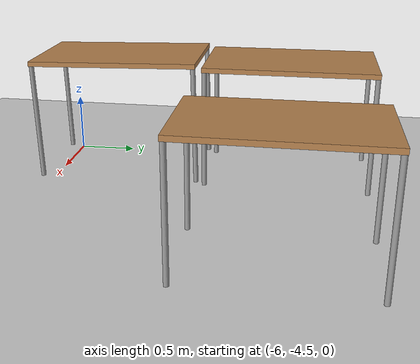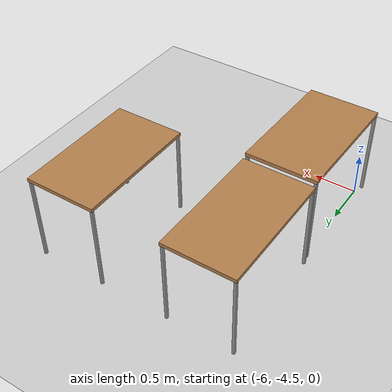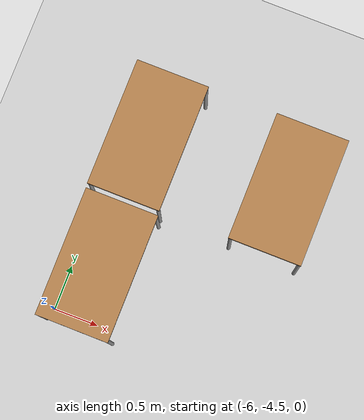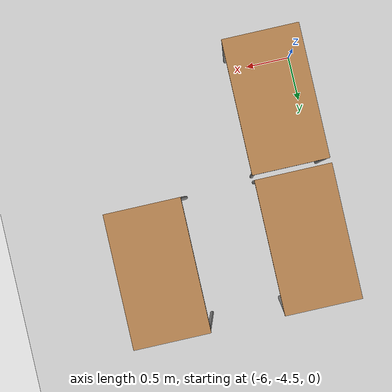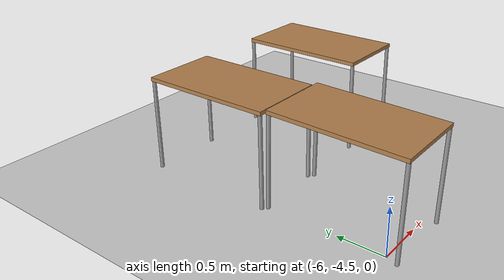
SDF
<sdf version="1.6">
 <world name="default">
  <model name="ground_plane">
   <static>1</static>
   <link name="link">
    <collision name="collision">
     <geometry><plane><normal>0 0 1</normal><size>100 100</size></plane></geometry>
     <surface><friction><ode><mu>100</mu><mu2>50</mu2></ode></friction></surface>
    </collision>
    <visual name="visual">
     <cast_shadows>0</cast_shadows>
     <geometry><plane><normal>0 0 1</normal><size>100 100</size></plane></geometry>
     <material>
      <script><uri>file://media/materials/scripts/gazebo.material</uri><name>Gazebo/Grey</name></script>
     </material>
    </visual>
   </link>
  </model>
  <model name="table_vert_0_clone_clone_clone_0_clone">
   <link name="link">
    <pose>0 0 0 0 0 -1.56614</pose>
    <inertial>
     <inertia><ixx>1</ixx><ixy>0</ixy><ixz>0</ixz><iyy>1</iyy><iyz>0</iyz><izz>1</izz></inertia>
     <mass>1</mass>
    </inertial>
    <visual name="visual1">
     <pose>0 0 1 0 -0 0</pose>
     <geometry><box><size>1.4 0.8 0.04</size></box></geometry>
     <material>
      <script><uri>file://media/materials/scripts/gazebo.material</uri><name>Gazebo/Wood</name></script>
      <ambient>1 1 1 1</ambient>
      <diffuse>1 1 1 1</diffuse>
      <specular>0.2 0.2 0.2 1</specular>
      <emissive>0 0 0 1</emissive>
     </material>
    </visual>
    <visual name="front_left_leg">
     <pose>0.68 0.38 0.5 0 -0 0</pose>
     <geometry><cylinder><radius>0.02</radius><length>1</length></cylinder></geometry>
     <material>
      <script><uri>file://media/materials/scripts/gazebo.material</uri><name>Gazebo/Grey</name></script>
      <ambient>0.3 0.3 0.3 1</ambient>
      <diffuse>0.7 0.7 0.7 1</diffuse>
      <specular>0.01 0.01 0.01 1</specular>
      <emissive>0 0 0 1</emissive>
     </material>
    </visual>
    <visual name="front_right_leg">
     <pose>0.68 -0.38 0.5 0 -0 0</pose>
     <geometry><cylinder><radius>0.02</radius><length>1</length></cylinder></geometry>
     <material>
      <script><uri>file://media/materials/scripts/gazebo.material</uri><name>Gazebo/Grey</name></script>
      <ambient>0.3 0.3 0.3 1</ambient>
      <diffuse>0.7 0.7 0.7 1</diffuse>
      <specular>0.01 0.01 0.01 1</specular>
      <emissive>0 0 0 1</emissive>
     </material>
    </visual>
    <visual name="back_right_leg">
     <pose>-0.68 -0.38 0.5 0 -0 0</pose>
     <geometry><cylinder><radius>0.02</radius><length>1</length></cylinder></geometry>
     <material>
      <script><uri>file://media/materials/scripts/gazebo.material</uri><name>Gazebo/Grey</name></script>
      <ambient>0.3 0.3 0.3 1</ambient>
      <diffuse>0.7 0.7 0.7 1</diffuse>
      <specular>0.01 0.01 0.01 1</specular>
      <emissive>0 0 0 1</emissive>
     </material>
    </visual>
    <visual name="back_left_leg">
     <pose>-0.68 0.38 0.5 0 -0 0</pose>
     <geometry><cylinder><radius>0.02</radius><length>1</length></cylinder></geometry>
     <material>
      <script><uri>file://media/materials/scripts/gazebo.material</uri><name>Gazebo/Grey</name></script>
      <ambient>0.3 0.3 0.3 1</ambient>
      <diffuse>0.7 0.7 0.7 1</diffuse>
      <specular>0.01 0.01 0.01 1</specular>
      <emissive>0 0 0 1</emissive>
     </material>
    </visual>
    <collision name="surface">
     <pose>0 0 1 0 -0 0</pose>
     <geometry><box><size>1.5 0.8 0.03</size></box></geometry>
     <surface>
      <friction>
       <ode><mu>0.6</mu><mu2>0.6</mu2><fdir1>0 0 0</fdir1><slip1>0</slip1><slip2>0</slip2></ode>
       <torsional>
        <coefficient>1</coefficient>
        <patch_radius>0</patch_radius>
        <surface_radius>0</surface_radius>
        <use_patch_radius>1</use_patch_radius>
        <ode><slip>0</slip></ode>
       </torsional>
      </friction>
      <bounce><restitution_coefficient>0</restitution_coefficient><threshold>1e+06</threshold></bounce>
      <contact>
       <collide_without_contact>0</collide_without_contact>
       <collide_without_contact_bitmask>1</collide_without_contact_bitmask>
       <collide_bitmask>1</collide_bitmask>
       <ode>
        <soft_cfm>0</soft_cfm>
        <soft_erp>0.2</soft_erp>
        <kp>1e+13</kp>
        <kd>1</kd>
        <max_vel>0.01</max_vel>
        <min_depth>0</min_depth>
       </ode>
       <bullet>
        <split_impulse>1</split_impulse>
        <split_impulse_penetration_threshold>-0.01</split_impulse_penetration_threshold>
        <soft_cfm>0</soft_cfm>
        <soft_erp>0.2</soft_erp>
        <kp>1e+13</kp>
        <kd>1</kd>
       </bullet>
      </contact>
     </surface>
    </collision>
    <collision name="front_left_leg">
     <pose>0.68 0.38 0.5 0 -0 0</pose>
     <geometry><cylinder><radius>0.02</radius><length>1</length></cylinder></geometry>
     <surface>
      <friction>
       <ode><mu>1</mu><mu2>1</mu2><fdir1>0 0 0</fdir1><slip1>0</slip1><slip2>0</slip2></ode>
       <torsional>
        <coefficient>1</coefficient>
        <patch_radius>0</patch_radius>
        <surface_radius>0</surface_radius>
        <use_patch_radius>1</use_patch_radius>
        <ode><slip>0</slip></ode>
       </torsional>
      </friction>
      <bounce><restitution_coefficient>0</restitution_coefficient><threshold>1e+06</threshold></bounce>
      <contact>
       <collide_without_contact>0</collide_without_contact>
       <collide_without_contact_bitmask>1</collide_without_contact_bitmask>
       <collide_bitmask>1</collide_bitmask>
       <ode>
        <soft_cfm>0</soft_cfm>
        <soft_erp>0.2</soft_erp>
        <kp>1e+13</kp>
        <kd>1</kd>
        <max_vel>0.01</max_vel>
        <min_depth>0</min_depth>
       </ode>
       <bullet>
        <split_impulse>1</split_impulse>
        <split_impulse_penetration_threshold>-0.01</split_impulse_penetration_threshold>
        <soft_cfm>0</soft_cfm>
        <soft_erp>0.2</soft_erp>
        <kp>1e+13</kp>
        <kd>1</kd>
       </bullet>
      </contact>
     </surface>
    </collision>
    <collision name="front_right_leg">
     <pose>0.68 -0.38 0.5 0 -0 0</pose>
     <geometry><cylinder><radius>0.02</radius><length>1</length></cylinder></geometry>
     <surface>
      <friction>
       <ode><mu>1</mu><mu2>1</mu2><fdir1>0 0 0</fdir1><slip1>0</slip1><slip2>0</slip2></ode>
       <torsional>
        <coefficient>1</coefficient>
        <patch_radius>0</patch_radius>
        <surface_radius>0</surface_radius>
        <use_patch_radius>1</use_patch_radius>
        <ode><slip>0</slip></ode>
       </torsional>
      </friction>
      <bounce><restitution_coefficient>0</restitution_coefficient><threshold>1e+06</threshold></bounce>
      <contact>
       <collide_without_contact>0</collide_without_contact>
       <collide_without_contact_bitmask>1</collide_without_contact_bitmask>
       <collide_bitmask>1</collide_bitmask>
       <ode>
        <soft_cfm>0</soft_cfm>
        <soft_erp>0.2</soft_erp>
        <kp>1e+13</kp>
        <kd>1</kd>
        <max_vel>0.01</max_vel>
        <min_depth>0</min_depth>
       </ode>
       <bullet>
        <split_impulse>1</split_impulse>
        <split_impulse_penetration_threshold>-0.01</split_impulse_penetration_threshold>
        <soft_cfm>0</soft_cfm>
        <soft_erp>0.2</soft_erp>
        <kp>1e+13</kp>
        <kd>1</kd>
       </bullet>
      </contact>
     </surface>
    </collision>
    <collision name="back_right_leg">
     <pose>-0.68 -0.38 0.5 0 -0 0</pose>
     <geometry><cylinder><radius>0.02</radius><length>1</length></cylinder></geometry>
     <surface>
      <friction>
       <ode><mu>1</mu><mu2>1</mu2><fdir1>0 0 0</fdir1><slip1>0</slip1><slip2>0</slip2></ode>
       <torsional>
        <coefficient>1</coefficient>
        <patch_radius>0</patch_radius>
        <surface_radius>0</surface_radius>
        <use_patch_radius>1</use_patch_radius>
        <ode><slip>0</slip></ode>
       </torsional>
      </friction>
      <bounce><restitution_coefficient>0</restitution_coefficient><threshold>1e+06</threshold></bounce>
      <contact>
       <collide_without_contact>0</collide_without_contact>
       <collide_without_contact_bitmask>1</collide_without_contact_bitmask>
       <collide_bitmask>1</collide_bitmask>
       <ode>
        <soft_cfm>0</soft_cfm>
        <soft_erp>0.2</soft_erp>
        <kp>1e+13</kp>
        <kd>1</kd>
        <max_vel>0.01</max_vel>
        <min_depth>0</min_depth>
       </ode>
       <bullet>
        <split_impulse>1</split_impulse>
        <split_impulse_penetration_threshold>-0.01</split_impulse_penetration_threshold>
        <soft_cfm>0</soft_cfm>
        <soft_erp>0.2</soft_erp>
        <kp>1e+13</kp>
        <kd>1</kd>
       </bullet>
      </contact>
     </surface>
    </collision>
    <collision name="back_left_leg">
     <pose>-0.68 0.38 0.5 0 -0 0</pose>
     <geometry><cylinder><radius>0.02</radius><length>1</length></cylinder></geometry>
     <surface>
      <friction>
       <ode><mu>1</mu><mu2>1</mu2><fdir1>0 0 0</fdir1><slip1>0</slip1><slip2>0</slip2></ode>
       <torsional>
        <coefficient>1</coefficient>
        <patch_radius>0</patch_radius>
        <surface_radius>0</surface_radius>
        <use_patch_radius>1</use_patch_radius>
        <ode><slip>0</slip></ode>
       </torsional>
      </friction>
      <bounce><restitution_coefficient>0</restitution_coefficient><threshold>1e+06</threshold></bounce>
      <contact>
       <collide_without_contact>0</collide_without_contact>
       <collide_without_contact_bitmask>1</collide_without_contact_bitmask>
       <collide_bitmask>1</collide_bitmask>
       <ode>
        <soft_cfm>0</soft_cfm>
        <soft_erp>0.2</soft_erp>
        <kp>1e+13</kp>
        <kd>1</kd>
        <max_vel>0.01</max_vel>
        <min_depth>0</min_depth>
       </ode>
       <bullet>
        <split_impulse>1</split_impulse>
        <split_impulse_penetration_threshold>-0.01</split_impulse_penetration_threshold>
        <soft_cfm>0</soft_cfm>
        <soft_erp>0.2</soft_erp>
        <kp>1e+13</kp>
        <kd>1</kd>
       </bullet>
      </contact>
     </surface>
    </collision>
   </link>
   <static>0</static>
   <pose>-4.10739 -2.5099 -1.1e-05 -3e-06 -1e-06 -0.004659</pose>
  </model>
  <model name="table_vert_0_clone_clone_clone_0_clone_0">
   <link name="link">
    <pose>0 0 0 0 0 -1.56614</pose>
    <inertial>
     <inertia><ixx>1</ixx><ixy>0</ixy><ixz>0</ixz><iyy>1</iyy><iyz>0</iyz><izz>1</izz></inertia>
     <mass>1</mass>
    </inertial>
    <visual name="visual1">
     <pose>0 0 1 0 -0 0</pose>
     <geometry><box><size>1.4 0.8 0.04</size></box></geometry>
     <material>
      <script><uri>file://media/materials/scripts/gazebo.material</uri><name>Gazebo/Wood</name></script>
      <ambient>1 1 1 1</ambient>
      <diffuse>1 1 1 1</diffuse>
      <specular>0.2 0.2 0.2 1</specular>
      <emissive>0 0 0 1</emissive>
     </material>
    </visual>
    <visual name="front_left_leg">
     <pose>0.68 0.38 0.5 0 -0 0</pose>
     <geometry><cylinder><radius>0.02</radius><length>1</length></cylinder></geometry>
     <material>
      <script><uri>file://media/materials/scripts/gazebo.material</uri><name>Gazebo/Grey</name></script>
      <ambient>0.3 0.3 0.3 1</ambient>
      <diffuse>0.7 0.7 0.7 1</diffuse>
      <specular>0.01 0.01 0.01 1</specular>
      <emissive>0 0 0 1</emissive>
     </material>
    </visual>
    <visual name="front_right_leg">
     <pose>0.68 -0.38 0.5 0 -0 0</pose>
     <geometry><cylinder><radius>0.02</radius><length>1</length></cylinder></geometry>
     <material>
      <script><uri>file://media/materials/scripts/gazebo.material</uri><name>Gazebo/Grey</name></script>
      <ambient>0.3 0.3 0.3 1</ambient>
      <diffuse>0.7 0.7 0.7 1</diffuse>
      <specular>0.01 0.01 0.01 1</specular>
      <emissive>0 0 0 1</emissive>
     </material>
    </visual>
    <visual name="back_right_leg">
     <pose>-0.68 -0.38 0.5 0 -0 0</pose>
     <geometry><cylinder><radius>0.02</radius><length>1</length></cylinder></geometry>
     <material>
      <script><uri>file://media/materials/scripts/gazebo.material</uri><name>Gazebo/Grey</name></script>
      <ambient>0.3 0.3 0.3 1</ambient>
      <diffuse>0.7 0.7 0.7 1</diffuse>
      <specular>0.01 0.01 0.01 1</specular>
      <emissive>0 0 0 1</emissive>
     </material>
    </visual>
    <visual name="back_left_leg">
     <pose>-0.68 0.38 0.5 0 -0 0</pose>
     <geometry><cylinder><radius>0.02</radius><length>1</length></cylinder></geometry>
     <material>
      <script><uri>file://media/materials/scripts/gazebo.material</uri><name>Gazebo/Grey</name></script>
      <ambient>0.3 0.3 0.3 1</ambient>
      <diffuse>0.7 0.7 0.7 1</diffuse>
      <specular>0.01 0.01 0.01 1</specular>
      <emissive>0 0 0 1</emissive>
     </material>
    </visual>
    <collision name="surface">
     <pose>0 0 1 0 -0 0</pose>
     <geometry><box><size>1.5 0.8 0.03</size></box></geometry>
     <surface>
      <friction>
       <ode><mu>0.6</mu><mu2>0.6</mu2><fdir1>0 0 0</fdir1><slip1>0</slip1><slip2>0</slip2></ode>
       <torsional>
        <coefficient>1</coefficient>
        <patch_radius>0</patch_radius>
        <surface_radius>0</surface_radius>
        <use_patch_radius>1</use_patch_radius>
        <ode><slip>0</slip></ode>
       </torsional>
      </friction>
      <bounce><restitution_coefficient>0</restitution_coefficient><threshold>1e+06</threshold></bounce>
      <contact>
       <collide_without_contact>0</collide_without_contact>
       <collide_without_contact_bitmask>1</collide_without_contact_bitmask>
       <collide_bitmask>1</collide_bitmask>
       <ode>
        <soft_cfm>0</soft_cfm>
        <soft_erp>0.2</soft_erp>
        <kp>1e+13</kp>
        <kd>1</kd>
        <max_vel>0.01</max_vel>
        <min_depth>0</min_depth>
       </ode>
       <bullet>
        <split_impulse>1</split_impulse>
        <split_impulse_penetration_threshold>-0.01</split_impulse_penetration_threshold>
        <soft_cfm>0</soft_cfm>
        <soft_erp>0.2</soft_erp>
        <kp>1e+13</kp>
        <kd>1</kd>
       </bullet>
      </contact>
     </surface>
    </collision>
    <collision name="front_left_leg">
     <pose>0.68 0.38 0.5 0 -0 0</pose>
     <geometry><cylinder><radius>0.02</radius><length>1</length></cylinder></geometry>
     <surface>
      <friction>
       <ode><mu>1</mu><mu2>1</mu2><fdir1>0 0 0</fdir1><slip1>0</slip1><slip2>0</slip2></ode>
       <torsional>
        <coefficient>1</coefficient>
        <patch_radius>0</patch_radius>
        <surface_radius>0</surface_radius>
        <use_patch_radius>1</use_patch_radius>
        <ode><slip>0</slip></ode>
       </torsional>
      </friction>
      <bounce><restitution_coefficient>0</restitution_coefficient><threshold>1e+06</threshold></bounce>
      <contact>
       <collide_without_contact>0</collide_without_contact>
       <collide_without_contact_bitmask>1</collide_without_contact_bitmask>
       <collide_bitmask>1</collide_bitmask>
       <ode>
        <soft_cfm>0</soft_cfm>
        <soft_erp>0.2</soft_erp>
        <kp>1e+13</kp>
        <kd>1</kd>
        <max_vel>0.01</max_vel>
        <min_depth>0</min_depth>
       </ode>
       <bullet>
        <split_impulse>1</split_impulse>
        <split_impulse_penetration_threshold>-0.01</split_impulse_penetration_threshold>
        <soft_cfm>0</soft_cfm>
        <soft_erp>0.2</soft_erp>
        <kp>1e+13</kp>
        <kd>1</kd>
       </bullet>
      </contact>
     </surface>
    </collision>
    <collision name="front_right_leg">
     <pose>0.68 -0.38 0.5 0 -0 0</pose>
     <geometry><cylinder><radius>0.02</radius><length>1</length></cylinder></geometry>
     <surface>
      <friction>
       <ode><mu>1</mu><mu2>1</mu2><fdir1>0 0 0</fdir1><slip1>0</slip1><slip2>0</slip2></ode>
       <torsional>
        <coefficient>1</coefficient>
        <patch_radius>0</patch_radius>
        <surface_radius>0</surface_radius>
        <use_patch_radius>1</use_patch_radius>
        <ode><slip>0</slip></ode>
       </torsional>
      </friction>
      <bounce><restitution_coefficient>0</restitution_coefficient><threshold>1e+06</threshold></bounce>
      <contact>
       <collide_without_contact>0</collide_without_contact>
       <collide_without_contact_bitmask>1</collide_without_contact_bitmask>
       <collide_bitmask>1</collide_bitmask>
       <ode>
        <soft_cfm>0</soft_cfm>
        <soft_erp>0.2</soft_erp>
        <kp>1e+13</kp>
        <kd>1</kd>
        <max_vel>0.01</max_vel>
        <min_depth>0</min_depth>
       </ode>
       <bullet>
        <split_impulse>1</split_impulse>
        <split_impulse_penetration_threshold>-0.01</split_impulse_penetration_threshold>
        <soft_cfm>0</soft_cfm>
        <soft_erp>0.2</soft_erp>
        <kp>1e+13</kp>
        <kd>1</kd>
       </bullet>
      </contact>
     </surface>
    </collision>
    <collision name="back_right_leg">
     <pose>-0.68 -0.38 0.5 0 -0 0</pose>
     <geometry><cylinder><radius>0.02</radius><length>1</length></cylinder></geometry>
     <surface>
      <friction>
       <ode><mu>1</mu><mu2>1</mu2><fdir1>0 0 0</fdir1><slip1>0</slip1><slip2>0</slip2></ode>
       <torsional>
        <coefficient>1</coefficient>
        <patch_radius>0</patch_radius>
        <surface_radius>0</surface_radius>
        <use_patch_radius>1</use_patch_radius>
        <ode><slip>0</slip></ode>
       </torsional>
      </friction>
      <bounce><restitution_coefficient>0</restitution_coefficient><threshold>1e+06</threshold></bounce>
      <contact>
       <collide_without_contact>0</collide_without_contact>
       <collide_without_contact_bitmask>1</collide_without_contact_bitmask>
       <collide_bitmask>1</collide_bitmask>
       <ode>
        <soft_cfm>0</soft_cfm>
        <soft_erp>0.2</soft_erp>
        <kp>1e+13</kp>
        <kd>1</kd>
        <max_vel>0.01</max_vel>
        <min_depth>0</min_depth>
       </ode>
       <bullet>
        <split_impulse>1</split_impulse>
        <split_impulse_penetration_threshold>-0.01</split_impulse_penetration_threshold>
        <soft_cfm>0</soft_cfm>
        <soft_erp>0.2</soft_erp>
        <kp>1e+13</kp>
        <kd>1</kd>
       </bullet>
      </contact>
     </surface>
    </collision>
    <collision name="back_left_leg">
     <pose>-0.68 0.38 0.5 0 -0 0</pose>
     <geometry><cylinder><radius>0.02</radius><length>1</length></cylinder></geometry>
     <surface>
      <friction>
       <ode><mu>1</mu><mu2>1</mu2><fdir1>0 0 0</fdir1><slip1>0</slip1><slip2>0</slip2></ode>
       <torsional>
        <coefficient>1</coefficient>
        <patch_radius>0</patch_radius>
        <surface_radius>0</surface_radius>
        <use_patch_radius>1</use_patch_radius>
        <ode><slip>0</slip></ode>
       </torsional>
      </friction>
      <bounce><restitution_coefficient>0</restitution_coefficient><threshold>1e+06</threshold></bounce>
      <contact>
       <collide_without_contact>0</collide_without_contact>
       <collide_without_contact_bitmask>1</collide_without_contact_bitmask>
       <collide_bitmask>1</collide_bitmask>
       <ode>
        <soft_cfm>0</soft_cfm>
        <soft_erp>0.2</soft_erp>
        <kp>1e+13</kp>
        <kd>1</kd>
        <max_vel>0.01</max_vel>
        <min_depth>0</min_depth>
       </ode>
       <bullet>
        <split_impulse>1</split_impulse>
        <split_impulse_penetration_threshold>-0.01</split_impulse_penetration_threshold>
        <soft_cfm>0</soft_cfm>
        <soft_erp>0.2</soft_erp>
        <kp>1e+13</kp>
        <kd>1</kd>
       </bullet>
      </contact>
     </surface>
    </collision>
   </link>
   <static>0</static>
   <pose>-5.66778 -2.5099 0 0 -1e-06 -0.004657</pose>
  </model>
  <model name="table_vert_0_clone_clone_clone_0_clone_0_clone_1">
   <link name="link">
    <pose>0 0 0 0 0 -1.56614</pose>
    <inertial>
     <inertia><ixx>1</ixx><ixy>0</ixy><ixz>0</ixz><iyy>1</iyy><iyz>0</iyz><izz>1</izz></inertia>
     <mass>1</mass>
    </inertial>
    <visual name="visual1">
     <pose>0 0 1 0 -0 0</pose>
     <geometry><box><size>1.4 0.8 0.04</size></box></geometry>
     <material>
      <script><uri>file://media/materials/scripts/gazebo.material</uri><name>Gazebo/Wood</name></script>
      <ambient>1 1 1 1</ambient>
      <diffuse>1 1 1 1</diffuse>
      <specular>0.2 0.2 0.2 1</specular>
      <emissive>0 0 0 1</emissive>
     </material>
    </visual>
    <visual name="front_left_leg">
     <pose>0.68 0.38 0.5 0 -0 0</pose>
     <geometry><cylinder><radius>0.02</radius><length>1</length></cylinder></geometry>
     <material>
      <script><uri>file://media/materials/scripts/gazebo.material</uri><name>Gazebo/Grey</name></script>
      <ambient>0.3 0.3 0.3 1</ambient>
      <diffuse>0.7 0.7 0.7 1</diffuse>
      <specular>0.01 0.01 0.01 1</specular>
      <emissive>0 0 0 1</emissive>
     </material>
    </visual>
    <visual name="front_right_leg">
     <pose>0.68 -0.38 0.5 0 -0 0</pose>
     <geometry><cylinder><radius>0.02</radius><length>1</length></cylinder></geometry>
     <material>
      <script><uri>file://media/materials/scripts/gazebo.material</uri><name>Gazebo/Grey</name></script>
      <ambient>0.3 0.3 0.3 1</ambient>
      <diffuse>0.7 0.7 0.7 1</diffuse>
      <specular>0.01 0.01 0.01 1</specular>
      <emissive>0 0 0 1</emissive>
     </material>
    </visual>
    <visual name="back_right_leg">
     <pose>-0.68 -0.38 0.5 0 -0 0</pose>
     <geometry><cylinder><radius>0.02</radius><length>1</length></cylinder></geometry>
     <material>
      <script><uri>file://media/materials/scripts/gazebo.material</uri><name>Gazebo/Grey</name></script>
      <ambient>0.3 0.3 0.3 1</ambient>
      <diffuse>0.7 0.7 0.7 1</diffuse>
      <specular>0.01 0.01 0.01 1</specular>
      <emissive>0 0 0 1</emissive>
     </material>
    </visual>
    <visual name="back_left_leg">
     <pose>-0.68 0.38 0.5 0 -0 0</pose>
     <geometry><cylinder><radius>0.02</radius><length>1</length></cylinder></geometry>
     <material>
      <script><uri>file://media/materials/scripts/gazebo.material</uri><name>Gazebo/Grey</name></script>
      <ambient>0.3 0.3 0.3 1</ambient>
      <diffuse>0.7 0.7 0.7 1</diffuse>
      <specular>0.01 0.01 0.01 1</specular>
      <emissive>0 0 0 1</emissive>
     </material>
    </visual>
    <collision name="surface">
     <pose>0 0 1 0 -0 0</pose>
     <geometry><box><size>1.5 0.8 0.03</size></box></geometry>
     <surface>
      <friction>
       <ode><mu>0.6</mu><mu2>0.6</mu2><fdir1>0 0 0</fdir1><slip1>0</slip1><slip2>0</slip2></ode>
       <torsional>
        <coefficient>1</coefficient>
        <patch_radius>0</patch_radius>
        <surface_radius>0</surface_radius>
        <use_patch_radius>1</use_patch_radius>
        <ode><slip>0</slip></ode>
       </torsional>
      </friction>
      <bounce><restitution_coefficient>0</restitution_coefficient><threshold>1e+06</threshold></bounce>
      <contact>
       <collide_without_contact>0</collide_without_contact>
       <collide_without_contact_bitmask>1</collide_without_contact_bitmask>
       <collide_bitmask>1</collide_bitmask>
       <ode>
        <soft_cfm>0</soft_cfm>
        <soft_erp>0.2</soft_erp>
        <kp>1e+13</kp>
        <kd>1</kd>
        <max_vel>0.01</max_vel>
        <min_depth>0</min_depth>
       </ode>
       <bullet>
        <split_impulse>1</split_impulse>
        <split_impulse_penetration_threshold>-0.01</split_impulse_penetration_threshold>
        <soft_cfm>0</soft_cfm>
        <soft_erp>0.2</soft_erp>
        <kp>1e+13</kp>
        <kd>1</kd>
       </bullet>
      </contact>
     </surface>
    </collision>
    <collision name="front_left_leg">
     <pose>0.68 0.38 0.5 0 -0 0</pose>
     <geometry><cylinder><radius>0.02</radius><length>1</length></cylinder></geometry>
     <surface>
      <friction>
       <ode><mu>1</mu><mu2>1</mu2><fdir1>0 0 0</fdir1><slip1>0</slip1><slip2>0</slip2></ode>
       <torsional>
        <coefficient>1</coefficient>
        <patch_radius>0</patch_radius>
        <surface_radius>0</surface_radius>
        <use_patch_radius>1</use_patch_radius>
        <ode><slip>0</slip></ode>
       </torsional>
      </friction>
      <bounce><restitution_coefficient>0</restitution_coefficient><threshold>1e+06</threshold></bounce>
      <contact>
       <collide_without_contact>0</collide_without_contact>
       <collide_without_contact_bitmask>1</collide_without_contact_bitmask>
       <collide_bitmask>1</collide_bitmask>
       <ode>
        <soft_cfm>0</soft_cfm>
        <soft_erp>0.2</soft_erp>
        <kp>1e+13</kp>
        <kd>1</kd>
        <max_vel>0.01</max_vel>
        <min_depth>0</min_depth>
       </ode>
       <bullet>
        <split_impulse>1</split_impulse>
        <split_impulse_penetration_threshold>-0.01</split_impulse_penetration_threshold>
        <soft_cfm>0</soft_cfm>
        <soft_erp>0.2</soft_erp>
        <kp>1e+13</kp>
        <kd>1</kd>
       </bullet>
      </contact>
     </surface>
    </collision>
    <collision name="front_right_leg">
     <pose>0.68 -0.38 0.5 0 -0 0</pose>
     <geometry><cylinder><radius>0.02</radius><length>1</length></cylinder></geometry>
     <surface>
      <friction>
       <ode><mu>1</mu><mu2>1</mu2><fdir1>0 0 0</fdir1><slip1>0</slip1><slip2>0</slip2></ode>
       <torsional>
        <coefficient>1</coefficient>
        <patch_radius>0</patch_radius>
        <surface_radius>0</surface_radius>
        <use_patch_radius>1</use_patch_radius>
        <ode><slip>0</slip></ode>
       </torsional>
      </friction>
      <bounce><restitution_coefficient>0</restitution_coefficient><threshold>1e+06</threshold></bounce>
      <contact>
       <collide_without_contact>0</collide_without_contact>
       <collide_without_contact_bitmask>1</collide_without_contact_bitmask>
       <collide_bitmask>1</collide_bitmask>
       <ode>
        <soft_cfm>0</soft_cfm>
        <soft_erp>0.2</soft_erp>
        <kp>1e+13</kp>
        <kd>1</kd>
        <max_vel>0.01</max_vel>
        <min_depth>0</min_depth>
       </ode>
       <bullet>
        <split_impulse>1</split_impulse>
        <split_impulse_penetration_threshold>-0.01</split_impulse_penetration_threshold>
        <soft_cfm>0</soft_cfm>
        <soft_erp>0.2</soft_erp>
        <kp>1e+13</kp>
        <kd>1</kd>
       </bullet>
      </contact>
     </surface>
    </collision>
    <collision name="back_right_leg">
     <pose>-0.68 -0.38 0.5 0 -0 0</pose>
     <geometry><cylinder><radius>0.02</radius><length>1</length></cylinder></geometry>
     <surface>
      <friction>
       <ode><mu>1</mu><mu2>1</mu2><fdir1>0 0 0</fdir1><slip1>0</slip1><slip2>0</slip2></ode>
       <torsional>
        <coefficient>1</coefficient>
        <patch_radius>0</patch_radius>
        <surface_radius>0</surface_radius>
        <use_patch_radius>1</use_patch_radius>
        <ode><slip>0</slip></ode>
       </torsional>
      </friction>
      <bounce><restitution_coefficient>0</restitution_coefficient><threshold>1e+06</threshold></bounce>
      <contact>
       <collide_without_contact>0</collide_without_contact>
       <collide_without_contact_bitmask>1</collide_without_contact_bitmask>
       <collide_bitmask>1</collide_bitmask>
       <ode>
        <soft_cfm>0</soft_cfm>
        <soft_erp>0.2</soft_erp>
        <kp>1e+13</kp>
        <kd>1</kd>
        <max_vel>0.01</max_vel>
        <min_depth>0</min_depth>
       </ode>
       <bullet>
        <split_impulse>1</split_impulse>
        <split_impulse_penetration_threshold>-0.01</split_impulse_penetration_threshold>
        <soft_cfm>0</soft_cfm>
        <soft_erp>0.2</soft_erp>
        <kp>1e+13</kp>
        <kd>1</kd>
       </bullet>
      </contact>
     </surface>
    </collision>
    <collision name="back_left_leg">
     <pose>-0.68 0.38 0.5 0 -0 0</pose>
     <geometry><cylinder><radius>0.02</radius><length>1</length></cylinder></geometry>
     <surface>
      <friction>
       <ode><mu>1</mu><mu2>1</mu2><fdir1>0 0 0</fdir1><slip1>0</slip1><slip2>0</slip2></ode>
       <torsional>
        <coefficient>1</coefficient>
        <patch_radius>0</patch_radius>
        <surface_radius>0</surface_radius>
        <use_patch_radius>1</use_patch_radius>
        <ode><slip>0</slip></ode>
       </torsional>
      </friction>
      <bounce><restitution_coefficient>0</restitution_coefficient><threshold>1e+06</threshold></bounce>
      <contact>
       <collide_without_contact>0</collide_without_contact>
       <collide_without_contact_bitmask>1</collide_without_contact_bitmask>
       <collide_bitmask>1</collide_bitmask>
       <ode>
        <soft_cfm>0</soft_cfm>
        <soft_erp>0.2</soft_erp>
        <kp>1e+13</kp>
        <kd>1</kd>
        <max_vel>0.01</max_vel>
        <min_depth>0</min_depth>
       </ode>
       <bullet>
        <split_impulse>1</split_impulse>
        <split_impulse_penetration_threshold>-0.01</split_impulse_penetration_threshold>
        <soft_cfm>0</soft_cfm>
        <soft_erp>0.2</soft_erp>
        <kp>1e+13</kp>
        <kd>1</kd>
       </bullet>
      </contact>
     </surface>
    </collision>
   </link>
   <static>0</static>
   <pose>-5.65668 -3.93913 0.015107 0.021581 0.000105 -0.004653</pose>
  </model>
 </world>
</sdf>
